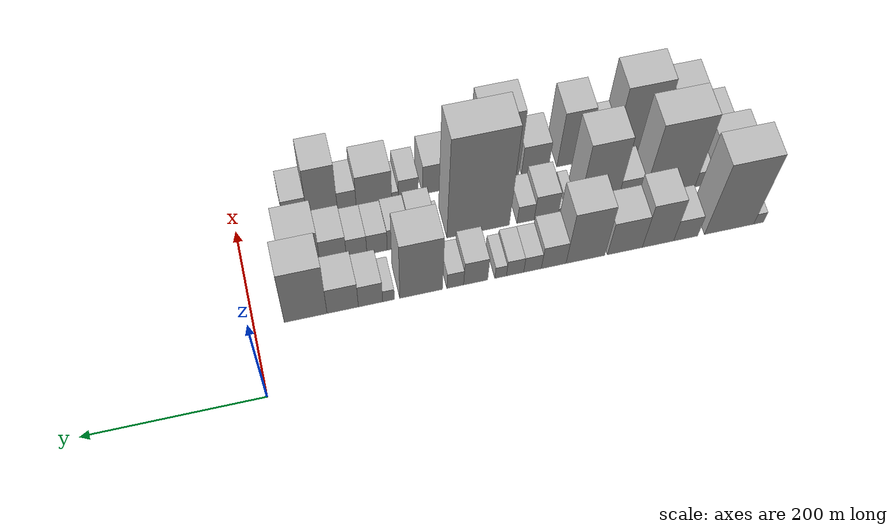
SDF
<sdf version="1.6">
 <world name="default">
  <model name="building_1">
   <static>1</static>
   <pose>100.0000 -574.0977 0 0.000000 0.000000 0.000000</pose>
   <link name="link">
    <pose>0 0 12.00 0 0 0</pose>
    <collision name="collision"><geometry><box><size>40.0000 11.8045 24.0000</size></box></geometry></collision>
    <visual name="visual">
     <cast_shadows>0</cast_shadows>
     <geometry><box><size>40.0000 11.8045 24.0000</size></box></geometry>
     <material>
      <script>
       <uri>model://HANNAS_wall/materials/scripts</uri>
       <uri>model://HANNAS_wall/materials/textures</uri>
       <name>vrc/HANNAS_wall</name>
      </script>
     </material>
    </visual>
   </link>
  </model>
  <model name="building_2">
   <static>1</static>
   <pose>100.0000 -539.3226 0 0.000000 0.000000 0.000000</pose>
   <link name="link">
    <pose>0 0 79.50 0 0 0</pose>
    <collision name="collision"><geometry><box><size>40.0000 57.7458 159.0000</size></box></geometry></collision>
    <visual name="visual">
     <cast_shadows>0</cast_shadows>
     <geometry><box><size>40.0000 57.7458 159.0000</size></box></geometry>
     <material>
      <script>
       <uri>model://HANNAS_wall/materials/scripts</uri>
       <uri>model://HANNAS_wall/materials/textures</uri>
       <name>vrc/HANNAS_wall</name>
      </script>
     </material>
    </visual>
   </link>
  </model>
  <model name="building_3">
   <static>1</static>
   <pose>100.0000 -488.3909 0 0.000000 0.000000 0.000000</pose>
   <link name="link">
    <pose>0 0 24.00 0 0 0</pose>
    <collision name="collision"><geometry><box><size>40.0000 28.1177 48.0000</size></box></geometry></collision>
    <visual name="visual">
     <cast_shadows>0</cast_shadows>
     <geometry><box><size>40.0000 28.1177 48.0000</size></box></geometry>
     <material>
      <script>
       <uri>model://HANNAS_wall/materials/scripts</uri>
       <uri>model://HANNAS_wall/materials/textures</uri>
       <name>vrc/HANNAS_wall</name>
      </script>
     </material>
    </visual>
   </link>
  </model>
  <model name="building_4">
   <static>1</static>
   <pose>100.0000 -456.1333 0 0.000000 0.000000 0.000000</pose>
   <link name="link">
    <pose>0 0 49.50 0 0 0</pose>
    <collision name="collision"><geometry><box><size>40.0000 36.3975 99.0000</size></box></geometry></collision>
    <visual name="visual">
     <cast_shadows>0</cast_shadows>
     <geometry><box><size>40.0000 36.3975 99.0000</size></box></geometry>
     <material>
      <script>
       <uri>model://HANNAS_wall/materials/scripts</uri>
       <uri>model://HANNAS_wall/materials/textures</uri>
       <name>vrc/HANNAS_wall</name>
      </script>
     </material>
    </visual>
   </link>
  </model>
  <model name="building_5">
   <static>1</static>
   <pose>100.0000 -417.6752 0 0.000000 0.000000 0.000000</pose>
   <link name="link">
    <pose>0 0 37.50 0 0 0</pose>
    <collision name="collision"><geometry><box><size>40.0000 40.5187 75.0000</size></box></geometry></collision>
    <visual name="visual">
     <cast_shadows>0</cast_shadows>
     <geometry><box><size>40.0000 40.5187 75.0000</size></box></geometry>
     <material>
      <script>
       <uri>model://HANNAS_wall/materials/scripts</uri>
       <uri>model://HANNAS_wall/materials/textures</uri>
       <name>vrc/HANNAS_wall</name>
      </script>
     </material>
    </visual>
   </link>
  </model>
  <model name="building_6">
   <static>1</static>
   <pose>100.0000 -372.1113 0 0.000000 0.000000 0.000000</pose>
   <link name="link">
    <pose>0 0 58.50 0 0 0</pose>
    <collision name="collision"><geometry><box><size>40.0000 44.6091 117.0000</size></box></geometry></collision>
    <visual name="visual">
     <cast_shadows>0</cast_shadows>
     <geometry><box><size>40.0000 44.6091 117.0000</size></box></geometry>
     <material>
      <script>
       <uri>model://HANNAS_wall/materials/scripts</uri>
       <uri>model://HANNAS_wall/materials/textures</uri>
       <name>vrc/HANNAS_wall</name>
      </script>
     </material>
    </visual>
   </link>
  </model>
  <model name="building_7">
   <static>1</static>
   <pose>100.0000 -335.6310 0 0.000000 0.000000 0.000000</pose>
   <link name="link">
    <pose>0 0 25.50 0 0 0</pose>
    <collision name="collision"><geometry><box><size>40.0000 28.3515 51.0000</size></box></geometry></collision>
    <visual name="visual">
     <cast_shadows>0</cast_shadows>
     <geometry><box><size>40.0000 28.3515 51.0000</size></box></geometry>
     <material>
      <script>
       <uri>model://HANNAS_wall/materials/scripts</uri>
       <uri>model://HANNAS_wall/materials/textures</uri>
       <name>vrc/HANNAS_wall</name>
      </script>
     </material>
    </visual>
   </link>
  </model>
  <model name="building_8">
   <static>1</static>
   <pose>100.0000 -311.3759 0 0.000000 0.000000 0.000000</pose>
   <link name="link">
    <pose>0 0 18.00 0 0 0</pose>
    <collision name="collision"><geometry><box><size>40.0000 20.1587 36.0000</size></box></geometry></collision>
    <visual name="visual">
     <cast_shadows>0</cast_shadows>
     <geometry><box><size>40.0000 20.1587 36.0000</size></box></geometry>
     <material>
      <script>
       <uri>model://HANNAS_wall/materials/scripts</uri>
       <uri>model://HANNAS_wall/materials/textures</uri>
       <name>vrc/HANNAS_wall</name>
      </script>
     </material>
    </visual>
   </link>
  </model>
  <model name="building_9">
   <static>1</static>
   <pose>100.0000 -291.4509 0 0.000000 0.000000 0.000000</pose>
   <link name="link">
    <pose>0 0 18.00 0 0 0</pose>
    <collision name="collision"><geometry><box><size>40.0000 19.6914 36.0000</size></box></geometry></collision>
    <visual name="visual">
     <cast_shadows>0</cast_shadows>
     <geometry><box><size>40.0000 19.6914 36.0000</size></box></geometry>
     <material>
      <script>
       <uri>model://HANNAS_wall/materials/scripts</uri>
       <uri>model://HANNAS_wall/materials/textures</uri>
       <name>vrc/HANNAS_wall</name>
      </script>
     </material>
    </visual>
   </link>
  </model>
  <model name="building_10">
   <static>1</static>
   <pose>100.0000 -275.0171 0 0.000000 0.000000 0.000000</pose>
   <link name="link">
    <pose>0 0 13.50 0 0 0</pose>
    <collision name="collision"><geometry><box><size>40.0000 13.1762 27.0000</size></box></geometry></collision>
    <visual name="visual">
     <cast_shadows>0</cast_shadows>
     <geometry><box><size>40.0000 13.1762 27.0000</size></box></geometry>
     <material>
      <script>
       <uri>model://HANNAS_wall/materials/scripts</uri>
       <uri>model://HANNAS_wall/materials/textures</uri>
       <name>vrc/HANNAS_wall</name>
      </script>
     </material>
    </visual>
   </link>
  </model>
  <model name="building_11">
   <static>1</static>
   <pose>100.0000 -246.7445 0 0.000000 0.000000 0.000000</pose>
   <link name="link">
    <pose>0 0 27.00 0 0 0</pose>
    <collision name="collision"><geometry><box><size>40.0000 27.3691 54.0000</size></box></geometry></collision>
    <visual name="visual">
     <cast_shadows>0</cast_shadows>
     <geometry><box><size>40.0000 27.3691 54.0000</size></box></geometry>
     <material>
      <script>
       <uri>model://HANNAS_wall/materials/scripts</uri>
       <uri>model://HANNAS_wall/materials/textures</uri>
       <name>vrc/HANNAS_wall</name>
      </script>
     </material>
    </visual>
   </link>
  </model>
  <model name="building_12">
   <static>1</static>
   <pose>100.0000 -223.6213 0 0.000000 0.000000 0.000000</pose>
   <link name="link">
    <pose>0 0 18.00 0 0 0</pose>
    <collision name="collision"><geometry><box><size>40.0000 18.8772 36.0000</size></box></geometry></collision>
    <visual name="visual">
     <cast_shadows>0</cast_shadows>
     <geometry><box><size>40.0000 18.8772 36.0000</size></box></geometry>
     <material>
      <script>
       <uri>model://HANNAS_wall/materials/scripts</uri>
       <uri>model://HANNAS_wall/materials/textures</uri>
       <name>vrc/HANNAS_wall</name>
      </script>
     </material>
    </visual>
   </link>
  </model>
  <model name="building_13">
   <static>1</static>
   <pose>100.0000 -185.1757 0 0.000000 0.000000 0.000000</pose>
   <link name="link">
    <pose>0 0 64.50 0 0 0</pose>
    <collision name="collision"><geometry><box><size>40.0000 48.0139 129.0000</size></box></geometry></collision>
    <visual name="visual">
     <cast_shadows>0</cast_shadows>
     <geometry><box><size>40.0000 48.0139 129.0000</size></box></geometry>
     <material>
      <script>
       <uri>model://HANNAS_wall/materials/scripts</uri>
       <uri>model://HANNAS_wall/materials/textures</uri>
       <name>vrc/HANNAS_wall</name>
      </script>
     </material>
    </visual>
   </link>
  </model>
  <model name="building_14">
   <static>1</static>
   <pose>100.0000 -148.5750 0 0.000000 0.000000 0.000000</pose>
   <link name="link">
    <pose>0 0 13.50 0 0 0</pose>
    <collision name="collision"><geometry><box><size>40.0000 13.1874 27.0000</size></box></geometry></collision>
    <visual name="visual">
     <cast_shadows>0</cast_shadows>
     <geometry><box><size>40.0000 13.1874 27.0000</size></box></geometry>
     <material>
      <script>
       <uri>model://HANNAS_wall/materials/scripts</uri>
       <uri>model://HANNAS_wall/materials/textures</uri>
       <name>vrc/HANNAS_wall</name>
      </script>
     </material>
    </visual>
   </link>
  </model>
  <model name="building_15">
   <static>1</static>
   <pose>100.0000 -128.4397 0 0.000000 0.000000 0.000000</pose>
   <link name="link">
    <pose>0 0 25.50 0 0 0</pose>
    <collision name="collision"><geometry><box><size>40.0000 27.0833 51.0000</size></box></geometry></collision>
    <visual name="visual">
     <cast_shadows>0</cast_shadows>
     <geometry><box><size>40.0000 27.0833 51.0000</size></box></geometry>
     <material>
      <script>
       <uri>model://HANNAS_wall/materials/scripts</uri>
       <uri>model://HANNAS_wall/materials/textures</uri>
       <name>vrc/HANNAS_wall</name>
      </script>
     </material>
    </visual>
   </link>
  </model>
  <model name="building_16">
   <static>1</static>
   <pose>100.0000 -97.4755 0 0.000000 0.000000 0.000000</pose>
   <link name="link">
    <pose>0 0 30.00 0 0 0</pose>
    <collision name="collision"><geometry><box><size>40.0000 34.8450 60.0000</size></box></geometry></collision>
    <visual name="visual">
     <cast_shadows>0</cast_shadows>
     <geometry><box><size>40.0000 34.8450 60.0000</size></box></geometry>
     <material>
      <script>
       <uri>model://HANNAS_wall/materials/scripts</uri>
       <uri>model://HANNAS_wall/materials/textures</uri>
       <name>vrc/HANNAS_wall</name>
      </script>
     </material>
    </visual>
   </link>
  </model>
  <model name="building_17">
   <static>1</static>
   <pose>100.0000 -56.4032 0 0.000000 0.000000 0.000000</pose>
   <link name="link">
    <pose>0 0 60.00 0 0 0</pose>
    <collision name="collision"><geometry><box><size>40.0000 47.2996 120.0000</size></box></geometry></collision>
    <visual name="visual">
     <cast_shadows>0</cast_shadows>
     <geometry><box><size>40.0000 47.2996 120.0000</size></box></geometry>
     <material>
      <script>
       <uri>model://HANNAS_wall/materials/scripts</uri>
       <uri>model://HANNAS_wall/materials/textures</uri>
       <name>vrc/HANNAS_wall</name>
      </script>
     </material>
    </visual>
   </link>
  </model>
  <model name="building_34">
   <static>1</static>
   <pose>160.0000 -557.8191 0 0.000000 0.000000 0.000000</pose>
   <link name="link">
    <pose>0 0 42.00 0 0 0</pose>
    <collision name="collision"><geometry><box><size>40.0000 44.3619 84.0000</size></box></geometry></collision>
    <visual name="visual">
     <cast_shadows>0</cast_shadows>
     <geometry><box><size>40.0000 44.3619 84.0000</size></box></geometry>
     <material>
      <script>
       <uri>model://HANNAS_wall/materials/scripts</uri>
       <uri>model://HANNAS_wall/materials/textures</uri>
       <name>vrc/HANNAS_wall</name>
      </script>
     </material>
    </visual>
   </link>
  </model>
  <model name="building_35">
   <static>1</static>
   <pose>160.0000 -526.9642 0 0.000000 0.000000 0.000000</pose>
   <link name="link">
    <pose>0 0 16.50 0 0 0</pose>
    <collision name="collision"><geometry><box><size>40.0000 17.3478 33.0000</size></box></geometry></collision>
    <visual name="visual">
     <cast_shadows>0</cast_shadows>
     <geometry><box><size>40.0000 17.3478 33.0000</size></box></geometry>
     <material>
      <script>
       <uri>model://HANNAS_wall/materials/scripts</uri>
       <uri>model://HANNAS_wall/materials/textures</uri>
       <name>vrc/HANNAS_wall</name>
      </script>
     </material>
    </visual>
   </link>
  </model>
  <model name="building_36">
   <static>1</static>
   <pose>160.0000 -487.8115 0 0.000000 0.000000 0.000000</pose>
   <link name="link">
    <pose>0 0 79.50 0 0 0</pose>
    <collision name="collision"><geometry><box><size>40.0000 60.9576 159.0000</size></box></geometry></collision>
    <visual name="visual">
     <cast_shadows>0</cast_shadows>
     <geometry><box><size>40.0000 60.9576 159.0000</size></box></geometry>
     <material>
      <script>
       <uri>model://HANNAS_wall/materials/scripts</uri>
       <uri>model://HANNAS_wall/materials/textures</uri>
       <name>vrc/HANNAS_wall</name>
      </script>
     </material>
    </visual>
   </link>
  </model>
  <model name="building_37">
   <static>1</static>
   <pose>160.0000 -439.8221 0 0.000000 0.000000 0.000000</pose>
   <link name="link">
    <pose>0 0 25.50 0 0 0</pose>
    <collision name="collision"><geometry><box><size>40.0000 27.0212 51.0000</size></box></geometry></collision>
    <visual name="visual">
     <cast_shadows>0</cast_shadows>
     <geometry><box><size>40.0000 27.0212 51.0000</size></box></geometry>
     <material>
      <script>
       <uri>model://HANNAS_wall/materials/scripts</uri>
       <uri>model://HANNAS_wall/materials/textures</uri>
       <name>vrc/HANNAS_wall</name>
      </script>
     </material>
    </visual>
   </link>
  </model>
  <model name="building_38">
   <static>1</static>
   <pose>160.0000 -403.5088 0 0.000000 0.000000 0.000000</pose>
   <link name="link">
    <pose>0 0 73.50 0 0 0</pose>
    <collision name="collision"><geometry><box><size>40.0000 45.6054 147.0000</size></box></geometry></collision>
    <visual name="visual">
     <cast_shadows>0</cast_shadows>
     <geometry><box><size>40.0000 45.6054 147.0000</size></box></geometry>
     <material>
      <script>
       <uri>model://HANNAS_wall/materials/scripts</uri>
       <uri>model://HANNAS_wall/materials/textures</uri>
       <name>vrc/HANNAS_wall</name>
      </script>
     </material>
    </visual>
   </link>
  </model>
  <model name="building_39">
   <static>1</static>
   <pose>160.0000 -370.0665 0 0.000000 0.000000 0.000000</pose>
   <link name="link">
    <pose>0 0 13.50 0 0 0</pose>
    <collision name="collision"><geometry><box><size>40.0000 11.2794 27.0000</size></box></geometry></collision>
    <visual name="visual">
     <cast_shadows>0</cast_shadows>
     <geometry><box><size>40.0000 11.2794 27.0000</size></box></geometry>
     <material>
      <script>
       <uri>model://HANNAS_wall/materials/scripts</uri>
       <uri>model://HANNAS_wall/materials/textures</uri>
       <name>vrc/HANNAS_wall</name>
      </script>
     </material>
    </visual>
   </link>
  </model>
  <model name="building_40">
   <static>1</static>
   <pose>160.0000 -360.7533 0 0.000000 0.000000 0.000000</pose>
   <link name="link">
    <pose>0 0 7.50 0 0 0</pose>
    <collision name="collision"><geometry><box><size>40.0000 7.3470 15.0000</size></box></geometry></collision>
    <visual name="visual">
     <cast_shadows>0</cast_shadows>
     <geometry><box><size>40.0000 7.3470 15.0000</size></box></geometry>
     <material>
      <script>
       <uri>model://HANNAS_wall/materials/scripts</uri>
       <uri>model://HANNAS_wall/materials/textures</uri>
       <name>vrc/HANNAS_wall</name>
      </script>
     </material>
    </visual>
   </link>
  </model>
  <model name="building_41">
   <static>1</static>
   <pose>160.0000 -343.1494 0 0.000000 0.000000 0.000000</pose>
   <link name="link">
    <pose>0 0 27.00 0 0 0</pose>
    <collision name="collision"><geometry><box><size>40.0000 27.8608 54.0000</size></box></geometry></collision>
    <visual name="visual">
     <cast_shadows>0</cast_shadows>
     <geometry><box><size>40.0000 27.8608 54.0000</size></box></geometry>
     <material>
      <script>
       <uri>model://HANNAS_wall/materials/scripts</uri>
       <uri>model://HANNAS_wall/materials/textures</uri>
       <name>vrc/HANNAS_wall</name>
      </script>
     </material>
    </visual>
   </link>
  </model>
  <model name="building_42">
   <static>1</static>
   <pose>160.0000 -319.3329 0 0.000000 0.000000 0.000000</pose>
   <link name="link">
    <pose>0 0 19.50 0 0 0</pose>
    <collision name="collision"><geometry><box><size>40.0000 19.7723 39.0000</size></box></geometry></collision>
    <visual name="visual">
     <cast_shadows>0</cast_shadows>
     <geometry><box><size>40.0000 19.7723 39.0000</size></box></geometry>
     <material>
      <script>
       <uri>model://HANNAS_wall/materials/scripts</uri>
       <uri>model://HANNAS_wall/materials/textures</uri>
       <name>vrc/HANNAS_wall</name>
      </script>
     </material>
    </visual>
   </link>
  </model>
  <model name="building_43">
   <static>1</static>
   <pose>160.0000 -264.4364 0 0.000000 0.000000 0.000000</pose>
   <link name="link">
    <pose>0 0 109.50 0 0 0</pose>
    <collision name="collision"><geometry><box><size>40.0000 72.0207 219.0000</size></box></geometry></collision>
    <visual name="visual">
     <cast_shadows>0</cast_shadows>
     <geometry><box><size>40.0000 72.0207 219.0000</size></box></geometry>
     <material>
      <script>
       <uri>model://HANNAS_wall/materials/scripts</uri>
       <uri>model://HANNAS_wall/materials/textures</uri>
       <name>vrc/HANNAS_wall</name>
      </script>
     </material>
    </visual>
   </link>
  </model>
  <model name="building_44">
   <static>1</static>
   <pose>160.0000 -218.9697 0 0.000000 0.000000 0.000000</pose>
   <link name="link">
    <pose>0 0 9.00 0 0 0</pose>
    <collision name="collision"><geometry><box><size>40.0000 8.9126 18.0000</size></box></geometry></collision>
    <visual name="visual">
     <cast_shadows>0</cast_shadows>
     <geometry><box><size>40.0000 8.9126 18.0000</size></box></geometry>
     <material>
      <script>
       <uri>model://HANNAS_wall/materials/scripts</uri>
       <uri>model://HANNAS_wall/materials/textures</uri>
       <name>vrc/HANNAS_wall</name>
      </script>
     </material>
    </visual>
   </link>
  </model>
  <model name="building_45">
   <static>1</static>
   <pose>160.0000 -200.1484 0 0.000000 0.000000 0.000000</pose>
   <link name="link">
    <pose>0 0 27.00 0 0 0</pose>
    <collision name="collision"><geometry><box><size>40.0000 28.7300 54.0000</size></box></geometry></collision>
    <visual name="visual">
     <cast_shadows>0</cast_shadows>
     <geometry><box><size>40.0000 28.7300 54.0000</size></box></geometry>
     <material>
      <script>
       <uri>model://HANNAS_wall/materials/scripts</uri>
       <uri>model://HANNAS_wall/materials/textures</uri>
       <name>vrc/HANNAS_wall</name>
      </script>
     </material>
    </visual>
   </link>
  </model>
  <model name="building_46">
   <static>1</static>
   <pose>160.0000 -173.0433 0 0.000000 0.000000 0.000000</pose>
   <link name="link">
    <pose>0 0 24.00 0 0 0</pose>
    <collision name="collision"><geometry><box><size>40.0000 25.4803 48.0000</size></box></geometry></collision>
    <visual name="visual">
     <cast_shadows>0</cast_shadows>
     <geometry><box><size>40.0000 25.4803 48.0000</size></box></geometry>
     <material>
      <script>
       <uri>model://HANNAS_wall/materials/scripts</uri>
       <uri>model://HANNAS_wall/materials/textures</uri>
       <name>vrc/HANNAS_wall</name>
      </script>
     </material>
    </visual>
   </link>
  </model>
  <model name="building_47">
   <static>1</static>
   <pose>160.0000 -148.7403 0 0.000000 0.000000 0.000000</pose>
   <link name="link">
    <pose>0 0 22.50 0 0 0</pose>
    <collision name="collision"><geometry><box><size>40.0000 23.1255 45.0000</size></box></geometry></collision>
    <visual name="visual">
     <cast_shadows>0</cast_shadows>
     <geometry><box><size>40.0000 23.1255 45.0000</size></box></geometry>
     <material>
      <script>
       <uri>model://HANNAS_wall/materials/scripts</uri>
       <uri>model://HANNAS_wall/materials/textures</uri>
       <name>vrc/HANNAS_wall</name>
      </script>
     </material>
    </visual>
   </link>
  </model>
  <model name="building_48">
   <static>1</static>
   <pose>160.0000 -125.6557 0 0.000000 0.000000 0.000000</pose>
   <link name="link">
    <pose>0 0 22.50 0 0 0</pose>
    <collision name="collision"><geometry><box><size>40.0000 23.0437 45.0000</size></box></geometry></collision>
    <visual name="visual">
     <cast_shadows>0</cast_shadows>
     <geometry><box><size>40.0000 23.0437 45.0000</size></box></geometry>
     <material>
      <script>
       <uri>model://HANNAS_wall/materials/scripts</uri>
       <uri>model://HANNAS_wall/materials/textures</uri>
       <name>vrc/HANNAS_wall</name>
      </script>
     </material>
    </visual>
   </link>
  </model>
  <model name="building_49">
   <static>1</static>
   <pose>160.0000 -99.1700 0 0.000000 0.000000 0.000000</pose>
   <link name="link">
    <pose>0 0 27.00 0 0 0</pose>
    <collision name="collision"><geometry><box><size>40.0000 29.9278 54.0000</size></box></geometry></collision>
    <visual name="visual">
     <cast_shadows>0</cast_shadows>
     <geometry><box><size>40.0000 29.9278 54.0000</size></box></geometry>
     <material>
      <script>
       <uri>model://HANNAS_wall/materials/scripts</uri>
       <uri>model://HANNAS_wall/materials/textures</uri>
       <name>vrc/HANNAS_wall</name>
      </script>
     </material>
    </visual>
   </link>
  </model>
  <model name="building_50">
   <static>1</static>
   <pose>160.0000 -62.4816 0 0.000000 0.000000 0.000000</pose>
   <link name="link">
    <pose>0 0 39.00 0 0 0</pose>
    <collision name="collision"><geometry><box><size>40.0000 43.4489 78.0000</size></box></geometry></collision>
    <visual name="visual">
     <cast_shadows>0</cast_shadows>
     <geometry><box><size>40.0000 43.4489 78.0000</size></box></geometry>
     <material>
      <script>
       <uri>model://HANNAS_wall/materials/scripts</uri>
       <uri>model://HANNAS_wall/materials/textures</uri>
       <name>vrc/HANNAS_wall</name>
      </script>
     </material>
    </visual>
   </link>
  </model>
  <model name="building_66">
   <static>1</static>
   <pose>220.0000 -570.9593 0 0.000000 0.000000 0.000000</pose>
   <link name="link">
    <pose>0 0 18.00 0 0 0</pose>
    <collision name="collision"><geometry><box><size>40.0000 18.0814 36.0000</size></box></geometry></collision>
    <visual name="visual">
     <cast_shadows>0</cast_shadows>
     <geometry><box><size>40.0000 18.0814 36.0000</size></box></geometry>
     <material>
      <script>
       <uri>model://HANNAS_wall/materials/scripts</uri>
       <uri>model://HANNAS_wall/materials/textures</uri>
       <name>vrc/HANNAS_wall</name>
      </script>
     </material>
    </visual>
   </link>
  </model>
  <model name="building_67">
   <static>1</static>
   <pose>220.0000 -549.8084 0 0.000000 0.000000 0.000000</pose>
   <link name="link">
    <pose>0 0 22.50 0 0 0</pose>
    <collision name="collision"><geometry><box><size>40.0000 24.2204 45.0000</size></box></geometry></collision>
    <visual name="visual">
     <cast_shadows>0</cast_shadows>
     <geometry><box><size>40.0000 24.2204 45.0000</size></box></geometry>
     <material>
      <script>
       <uri>model://HANNAS_wall/materials/scripts</uri>
       <uri>model://HANNAS_wall/materials/textures</uri>
       <name>vrc/HANNAS_wall</name>
      </script>
     </material>
    </visual>
   </link>
  </model>
  <model name="building_68">
   <static>1</static>
   <pose>220.0000 -518.6717 0 0.000000 0.000000 0.000000</pose>
   <link name="link">
    <pose>0 0 54.00 0 0 0</pose>
    <collision name="collision"><geometry><box><size>40.0000 38.0528 108.0000</size></box></geometry></collision>
    <visual name="visual">
     <cast_shadows>0</cast_shadows>
     <geometry><box><size>40.0000 38.0528 108.0000</size></box></geometry>
     <material>
      <script>
       <uri>model://HANNAS_wall/materials/scripts</uri>
       <uri>model://HANNAS_wall/materials/textures</uri>
       <name>vrc/HANNAS_wall</name>
      </script>
     </material>
    </visual>
   </link>
  </model>
  <model name="building_69">
   <static>1</static>
   <pose>220.0000 -465.8393 0 0.000000 0.000000 0.000000</pose>
   <link name="link">
    <pose>0 0 72.00 0 0 0</pose>
    <collision name="collision"><geometry><box><size>40.0000 53.6120 144.0000</size></box></geometry></collision>
    <visual name="visual">
     <cast_shadows>0</cast_shadows>
     <geometry><box><size>40.0000 53.6120 144.0000</size></box></geometry>
     <material>
      <script>
       <uri>model://HANNAS_wall/materials/scripts</uri>
       <uri>model://HANNAS_wall/materials/textures</uri>
       <name>vrc/HANNAS_wall</name>
      </script>
     </material>
    </visual>
   </link>
  </model>
  <model name="building_70">
   <static>1</static>
   <pose>220.0000 -423.2880 0 0.000000 0.000000 0.000000</pose>
   <link name="link">
    <pose>0 0 28.50 0 0 0</pose>
    <collision name="collision"><geometry><box><size>40.0000 31.4906 57.0000</size></box></geometry></collision>
    <visual name="visual">
     <cast_shadows>0</cast_shadows>
     <geometry><box><size>40.0000 31.4906 57.0000</size></box></geometry>
     <material>
      <script>
       <uri>model://HANNAS_wall/materials/scripts</uri>
       <uri>model://HANNAS_wall/materials/textures</uri>
       <name>vrc/HANNAS_wall</name>
      </script>
     </material>
    </visual>
   </link>
  </model>
  <model name="building_71">
   <static>1</static>
   <pose>220.0000 -389.8862 0 0.000000 0.000000 0.000000</pose>
   <link name="link">
    <pose>0 0 58.50 0 0 0</pose>
    <collision name="collision"><geometry><box><size>40.0000 35.3130 117.0000</size></box></geometry></collision>
    <visual name="visual">
     <cast_shadows>0</cast_shadows>
     <geometry><box><size>40.0000 35.3130 117.0000</size></box></geometry>
     <material>
      <script>
       <uri>model://HANNAS_wall/materials/scripts</uri>
       <uri>model://HANNAS_wall/materials/textures</uri>
       <name>vrc/HANNAS_wall</name>
      </script>
     </material>
    </visual>
   </link>
  </model>
  <model name="building_72">
   <static>1</static>
   <pose>220.0000 -346.2029 0 0.000000 0.000000 0.000000</pose>
   <link name="link">
    <pose>0 0 30.00 0 0 0</pose>
    <collision name="collision"><geometry><box><size>40.0000 32.0535 60.0000</size></box></geometry></collision>
    <visual name="visual">
     <cast_shadows>0</cast_shadows>
     <geometry><box><size>40.0000 32.0535 60.0000</size></box></geometry>
     <material>
      <script>
       <uri>model://HANNAS_wall/materials/scripts</uri>
       <uri>model://HANNAS_wall/materials/textures</uri>
       <name>vrc/HANNAS_wall</name>
      </script>
     </material>
    </visual>
   </link>
  </model>
  <model name="building_73">
   <static>1</static>
   <pose>220.0000 -303.0770 0 0.000000 0.000000 0.000000</pose>
   <link name="link">
    <pose>0 0 70.50 0 0 0</pose>
    <collision name="collision"><geometry><box><size>40.0000 48.1983 141.0000</size></box></geometry></collision>
    <visual name="visual">
     <cast_shadows>0</cast_shadows>
     <geometry><box><size>40.0000 48.1983 141.0000</size></box></geometry>
     <material>
      <script>
       <uri>model://HANNAS_wall/materials/scripts</uri>
       <uri>model://HANNAS_wall/materials/textures</uri>
       <name>vrc/HANNAS_wall</name>
      </script>
     </material>
    </visual>
   </link>
  </model>
  <model name="building_74">
   <static>1</static>
   <pose>220.0000 -270.1681 0 0.000000 0.000000 0.000000</pose>
   <link name="link">
    <pose>0 0 15.00 0 0 0</pose>
    <collision name="collision"><geometry><box><size>40.0000 17.6195 30.0000</size></box></geometry></collision>
    <visual name="visual">
     <cast_shadows>0</cast_shadows>
     <geometry><box><size>40.0000 17.6195 30.0000</size></box></geometry>
     <material>
      <script>
       <uri>model://HANNAS_wall/materials/scripts</uri>
       <uri>model://HANNAS_wall/materials/textures</uri>
       <name>vrc/HANNAS_wall</name>
      </script>
     </material>
    </visual>
   </link>
  </model>
  <model name="building_75">
   <static>1</static>
   <pose>220.0000 -232.9005 0 0.000000 0.000000 0.000000</pose>
   <link name="link">
    <pose>0 0 31.50 0 0 0</pose>
    <collision name="collision"><geometry><box><size>40.0000 36.9156 63.0000</size></box></geometry></collision>
    <visual name="visual">
     <cast_shadows>0</cast_shadows>
     <geometry><box><size>40.0000 36.9156 63.0000</size></box></geometry>
     <material>
      <script>
       <uri>model://HANNAS_wall/materials/scripts</uri>
       <uri>model://HANNAS_wall/materials/textures</uri>
       <name>vrc/HANNAS_wall</name>
      </script>
     </material>
    </visual>
   </link>
  </model>
  <model name="building_76">
   <static>1</static>
   <pose>220.0000 -197.9037 0 0.000000 0.000000 0.000000</pose>
   <link name="link">
    <pose>0 0 21.00 0 0 0</pose>
    <collision name="collision"><geometry><box><size>40.0000 23.0779 42.0000</size></box></geometry></collision>
    <visual name="visual">
     <cast_shadows>0</cast_shadows>
     <geometry><box><size>40.0000 23.0779 42.0000</size></box></geometry>
     <material>
      <script>
       <uri>model://HANNAS_wall/materials/scripts</uri>
       <uri>model://HANNAS_wall/materials/textures</uri>
       <name>vrc/HANNAS_wall</name>
      </script>
     </material>
    </visual>
   </link>
  </model>
  <model name="building_77">
   <static>1</static>
   <pose>220.0000 -182.5134 0 0.000000 0.000000 0.000000</pose>
   <link name="link">
    <pose>0 0 9.00 0 0 0</pose>
    <collision name="collision"><geometry><box><size>40.0000 7.7027 18.0000</size></box></geometry></collision>
    <visual name="visual">
     <cast_shadows>0</cast_shadows>
     <geometry><box><size>40.0000 7.7027 18.0000</size></box></geometry>
     <material>
      <script>
       <uri>model://HANNAS_wall/materials/scripts</uri>
       <uri>model://HANNAS_wall/materials/textures</uri>
       <name>vrc/HANNAS_wall</name>
      </script>
     </material>
    </visual>
   </link>
  </model>
  <model name="building_78">
   <static>1</static>
   <pose>220.0000 -158.1804 0 0.000000 0.000000 0.000000</pose>
   <link name="link">
    <pose>0 0 34.50 0 0 0</pose>
    <collision name="collision"><geometry><box><size>40.0000 40.9633 69.0000</size></box></geometry></collision>
    <visual name="visual">
     <cast_shadows>0</cast_shadows>
     <geometry><box><size>40.0000 40.9633 69.0000</size></box></geometry>
     <material>
      <script>
       <uri>model://HANNAS_wall/materials/scripts</uri>
       <uri>model://HANNAS_wall/materials/textures</uri>
       <name>vrc/HANNAS_wall</name>
      </script>
     </material>
    </visual>
   </link>
  </model>
  <model name="building_79">
   <static>1</static>
   <pose>220.0000 -126.9291 0 0.000000 0.000000 0.000000</pose>
   <link name="link">
    <pose>0 0 21.00 0 0 0</pose>
    <collision name="collision"><geometry><box><size>40.0000 21.5392 42.0000</size></box></geometry></collision>
    <visual name="visual">
     <cast_shadows>0</cast_shadows>
     <geometry><box><size>40.0000 21.5392 42.0000</size></box></geometry>
     <material>
      <script>
       <uri>model://HANNAS_wall/materials/scripts</uri>
       <uri>model://HANNAS_wall/materials/textures</uri>
       <name>vrc/HANNAS_wall</name>
      </script>
     </material>
    </visual>
   </link>
  </model>
  <model name="building_80">
   <static>1</static>
   <pose>220.0000 -98.6641 0 0.000000 0.000000 0.000000</pose>
   <link name="link">
    <pose>0 0 54.00 0 0 0</pose>
    <collision name="collision"><geometry><box><size>40.0000 34.9910 108.0000</size></box></geometry></collision>
    <visual name="visual">
     <cast_shadows>0</cast_shadows>
     <geometry><box><size>40.0000 34.9910 108.0000</size></box></geometry>
     <material>
      <script>
       <uri>model://HANNAS_wall/materials/scripts</uri>
       <uri>model://HANNAS_wall/materials/textures</uri>
       <name>vrc/HANNAS_wall</name>
      </script>
     </material>
    </visual>
   </link>
  </model>
  <model name="building_81">
   <static>1</static>
   <pose>220.0000 -67.5837 0 0.000000 0.000000 0.000000</pose>
   <link name="link">
    <pose>0 0 24.00 0 0 0</pose>
    <collision name="collision"><geometry><box><size>40.0000 27.1697 48.0000</size></box></geometry></collision>
    <visual name="visual">
     <cast_shadows>0</cast_shadows>
     <geometry><box><size>40.0000 27.1697 48.0000</size></box></geometry>
     <material>
      <script>
       <uri>model://HANNAS_wall/materials/scripts</uri>
       <uri>model://HANNAS_wall/materials/textures</uri>
       <name>vrc/HANNAS_wall</name>
      </script>
     </material>
    </visual>
   </link>
  </model>
 </world>
</sdf>
